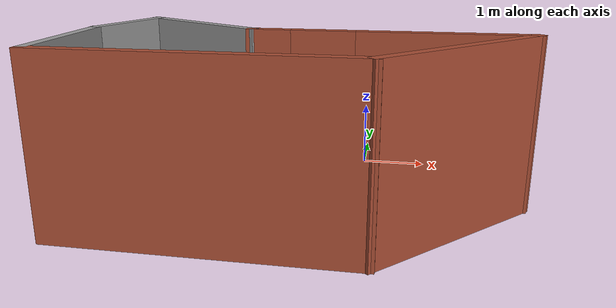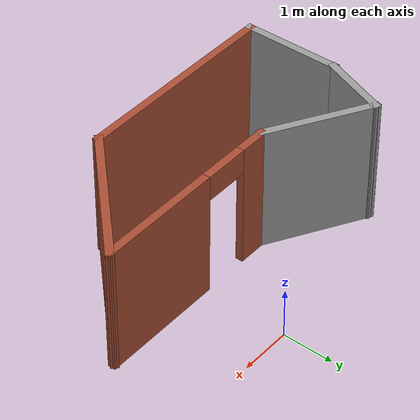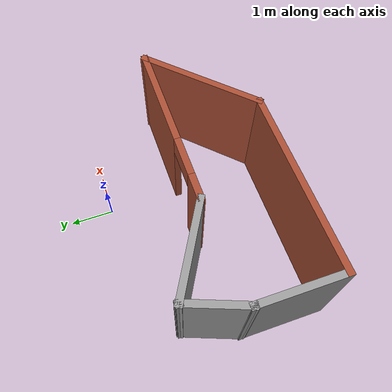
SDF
<?xml version='1.0'?>
<sdf version='1.7'>
  <model name='mapp'>
    <pose>-0.747633 -1.92303 0 0 -0 0</pose>
    <link name='Wall_0'>
      <collision name='Wall_0_Collision'>
        <geometry>
          <box>
            <size>0.16 0.15 2.5</size>
          </box>
        </geometry>
        <pose>0 0 1.25 0 -0 0</pose>
      </collision>
      <visual name='Wall_0_Visual'>
        <pose>0 0 1.25 0 -0 0</pose>
        <geometry>
          <box>
            <size>0.16 0.15 2.5</size>
          </box>
        </geometry>
        <material>
          <script>
            <uri>file://media/materials/scripts/gazebo.material</uri>
            <name>Gazebo/Grey</name>
          </script>
          <ambient>1 1 1 1</ambient>
        </material>
        <meta>
          <layer>0</layer>
        </meta>
      </visual>
      <pose>-3.06737 0.033033 0 0 -0 0</pose>
    </link>
    <link name='Wall_1'>
      <collision name='Wall_1_Collision'>
        <geometry>
          <box>
            <size>2 0.15 2.5</size>
          </box>
        </geometry>
        <pose>0 0 1.25 0 -0 0</pose>
      </collision>
      <visual name='Wall_1_Visual'>
        <pose>0 0 1.25 0 -0 0</pose>
        <geometry>
          <box>
            <size>2 0.15 2.5</size>
          </box>
        </geometry>
        <material>
          <script>
            <uri>file://media/materials/scripts/gazebo.material</uri>
            <name>Gazebo/Grey</name>
          </script>
          <ambient>1 1 1 1</ambient>
        </material>
        <meta>
          <layer>0</layer>
        </meta>
      </visual>
      <pose>-3.06237 -0.891967 0 0 -0 -1.5708</pose>
    </link>
    <link name='Wall_2'>
      <collision name='Wall_2_Collision'>
        <geometry>
          <box>
            <size>4.25 0.15 2.5</size>
          </box>
        </geometry>
        <pose>0 0 1.25 0 -0 0</pose>
      </collision>
      <visual name='Wall_2_Visual'>
        <pose>0 0 1.25 0 -0 0</pose>
        <geometry>
          <box>
            <size>4.25 0.15 2.5</size>
          </box>
        </geometry>
        <material>
          <script>
            <uri>file://media/materials/scripts/gazebo.material</uri>
            <name>Gazebo/Bricks</name>
          </script>
          <ambient>1 1 1 1</ambient>
        </material>
        <meta>
          <layer>0</layer>
        </meta>
      </visual>
      <pose>-1.01237 -1.81697 0 0 -0 0</pose>
    </link>
    <link name='Wall_3'>
      <collision name='Wall_3_Collision'>
        <geometry>
          <box>
            <size>3 0.15 2.5</size>
          </box>
        </geometry>
        <pose>0 0 1.25 0 -0 0</pose>
      </collision>
      <visual name='Wall_3_Visual'>
        <pose>0 0 1.25 0 -0 0</pose>
        <geometry>
          <box>
            <size>3 0.15 2.5</size>
          </box>
        </geometry>
        <material>
          <script>
            <uri>file://media/materials/scripts/gazebo.material</uri>
            <name>Gazebo/Bricks</name>
          </script>
          <ambient>1 1 1 1</ambient>
        </material>
        <meta>
          <layer>0</layer>
        </meta>
      </visual>
      <pose>2.04526 -0.80934 0 0 -0 0.785398</pose>
    </link>
    <link name='Wall_4'>
      <pose>1.12789 0.198287 0 0 -0 3.14159</pose>
      <visual name='Wall_4_Visual_0'>
        <pose>-0.769873 0 1.25 0 -0 0</pose>
        <geometry>
          <box>
            <size>2.46025 0.15 2.5</size>
          </box>
        </geometry>
        <material>
          <script>
            <uri>file://media/materials/scripts/gazebo.material</uri>
            <name>Gazebo/Bricks</name>
          </script>
          <ambient>1 1 1 1</ambient>
        </material>
        <meta>
          <layer>0</layer>
        </meta>
      </visual>
      <collision name='Wall_4_Collision_0'>
        <geometry>
          <box>
            <size>2.46025 0.15 2.5</size>
          </box>
        </geometry>
        <pose>-0.769873 0 1.25 0 -0 0</pose>
      </collision>
      <visual name='Wall_4_Visual_1'>
        <pose>1.68013 0 1.25 0 -0 0</pose>
        <geometry>
          <box>
            <size>0.639746 0.15 2.5</size>
          </box>
        </geometry>
        <material>
          <script>
            <uri>file://media/materials/scripts/gazebo.material</uri>
            <name>Gazebo/Bricks</name>
          </script>
          <ambient>1 1 1 1</ambient>
        </material>
        <meta>
          <layer>0</layer>
        </meta>
      </visual>
      <collision name='Wall_4_Collision_1'>
        <geometry>
          <box>
            <size>0.639746 0.15 2.5</size>
          </box>
        </geometry>
        <pose>1.68013 0 1.25 0 -0 0</pose>
      </collision>
      <visual name='Wall_4_Visual_2'>
        <pose>0.910254 0 2.25 0 -0 0</pose>
        <geometry>
          <box>
            <size>0.9 0.15 0.5</size>
          </box>
        </geometry>
        <material>
          <script>
            <uri>file://media/materials/scripts/gazebo.material</uri>
            <name>Gazebo/Bricks</name>
          </script>
          <ambient>1 1 1 1</ambient>
        </material>
        <meta>
          <layer>0</layer>
        </meta>
      </visual>
      <collision name='Wall_4_Collision_2'>
        <geometry>
          <box>
            <size>0.9 0.15 0.5</size>
          </box>
        </geometry>
        <pose>0.910254 0 2.25 0 -0 0</pose>
      </collision>
    </link>
    <link name='Wall_5'>
      <collision name='Wall_5_Collision'>
        <geometry>
          <box>
            <size>2.25 0.15 2.5</size>
          </box>
        </geometry>
        <pose>0 0 1.25 0 -0 0</pose>
      </collision>
      <visual name='Wall_5_Visual'>
        <pose>0 0 1.25 0 -0 0</pose>
        <geometry>
          <box>
            <size>2.25 0.15 2.5</size>
          </box>
        </geometry>
        <material>
          <script>
            <uri>file://media/materials/scripts/gazebo.material</uri>
            <name>Gazebo/Grey</name>
          </script>
          <ambient>1 1 1 1</ambient>
        </material>
        <meta>
          <layer>0</layer>
        </meta>
      </visual>
      <pose>-1.70644 0.723287 0 0 -0 2.61799</pose>
    </link>
    <link name='Wall_6'>
      <collision name='Wall_6_Collision'>
        <geometry>
          <box>
            <size>0.16 0.15 2.5</size>
          </box>
        </geometry>
        <pose>0 0 1.25 0 -0 0</pose>
      </collision>
      <visual name='Wall_6_Visual'>
        <pose>0 0 1.25 0 -0 0</pose>
        <geometry>
          <box>
            <size>0.16 0.15 2.5</size>
          </box>
        </geometry>
        <material>
          <script>
            <uri>file://media/materials/scripts/gazebo.material</uri>
            <name>Gazebo/Grey</name>
          </script>
          <ambient>1 1 1 1</ambient>
        </material>
        <meta>
          <layer>0</layer>
        </meta>
      </visual>
      <pose>-2.61077 1.24829 0 0 -0 0</pose>
    </link>
    <link name='Wall_7'>
      <collision name='Wall_7_Collision'>
        <geometry>
          <box>
            <size>1.4482 0.15 2.5</size>
          </box>
        </geometry>
        <pose>0 0 1.25 0 -0 0</pose>
      </collision>
      <visual name='Wall_7_Visual'>
        <pose>0 0 1.25 0 -0 0</pose>
        <geometry>
          <box>
            <size>1.4482 0.15 2.5</size>
          </box>
        </geometry>
        <material>
          <script>
            <uri>file://media/materials/scripts/gazebo.material</uri>
            <name>Gazebo/Grey</name>
          </script>
          <ambient>1 1 1 1</ambient>
        </material>
        <meta>
          <layer>0</layer>
        </meta>
      </visual>
      <pose>-2.83407 0.64066 0 0 -0 -1.9302</pose>
    </link>
    <static>1</static>
  </model>
</sdf>
